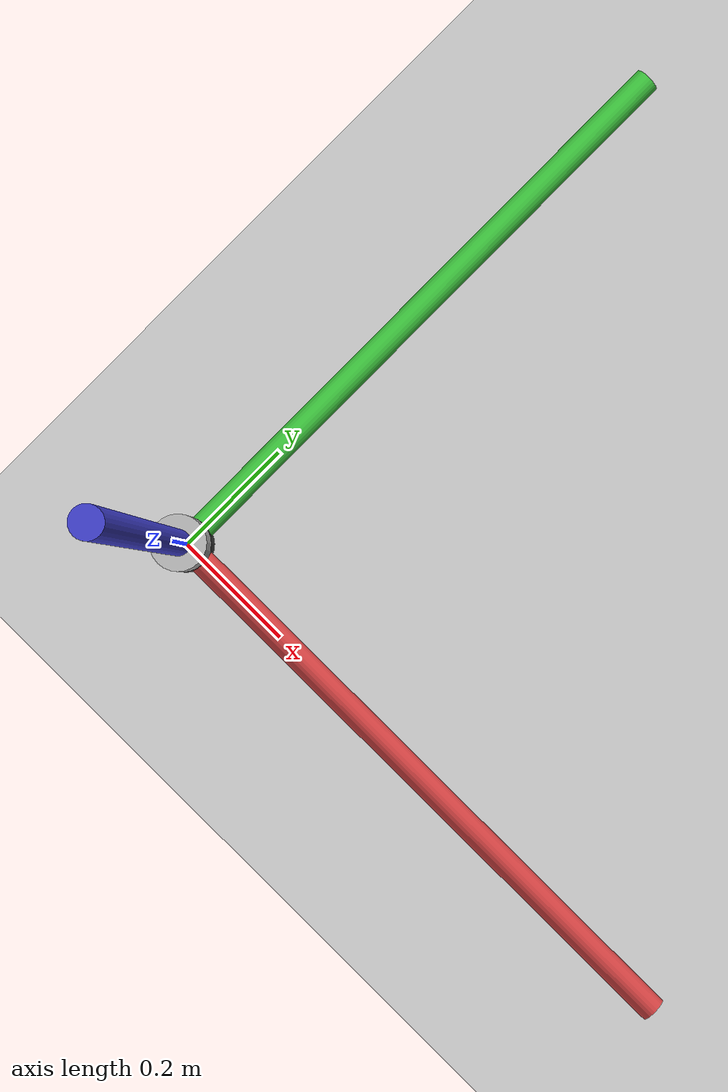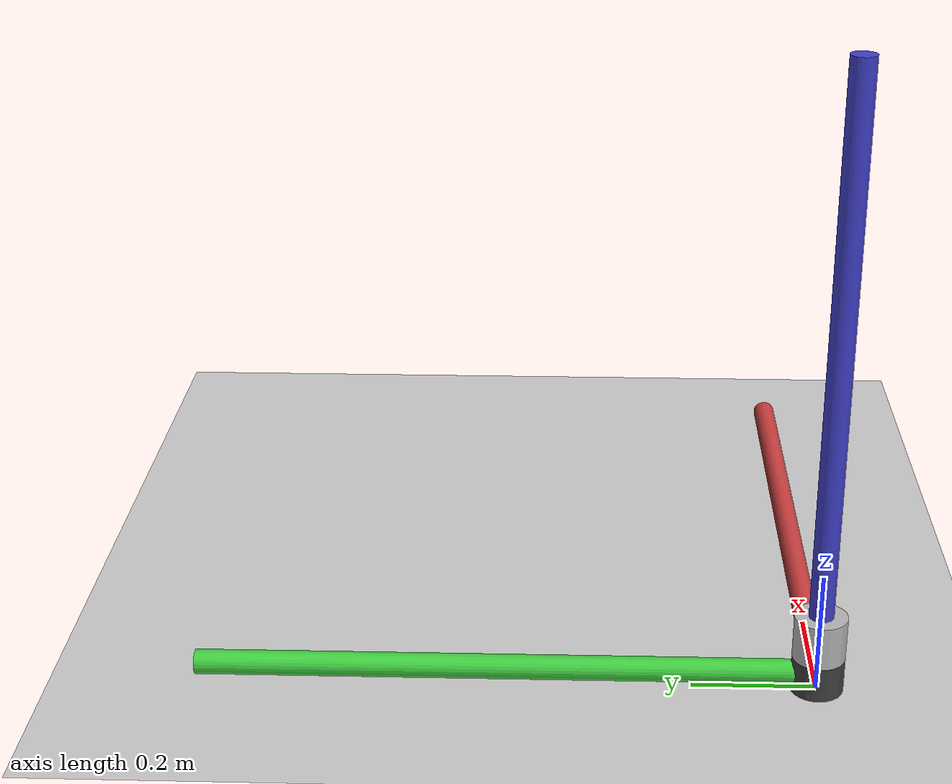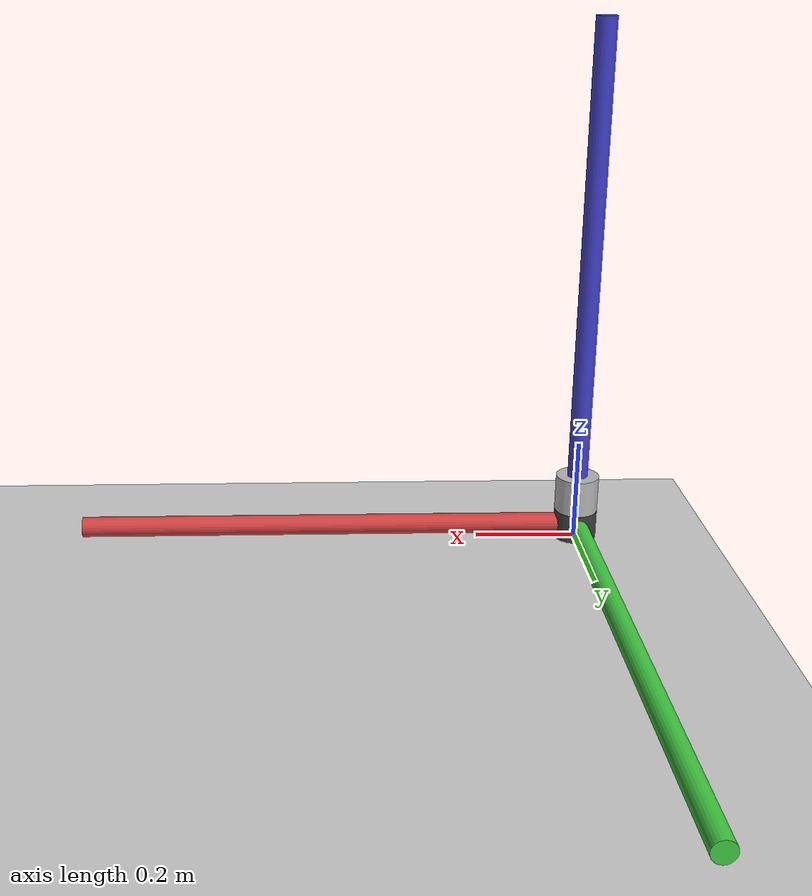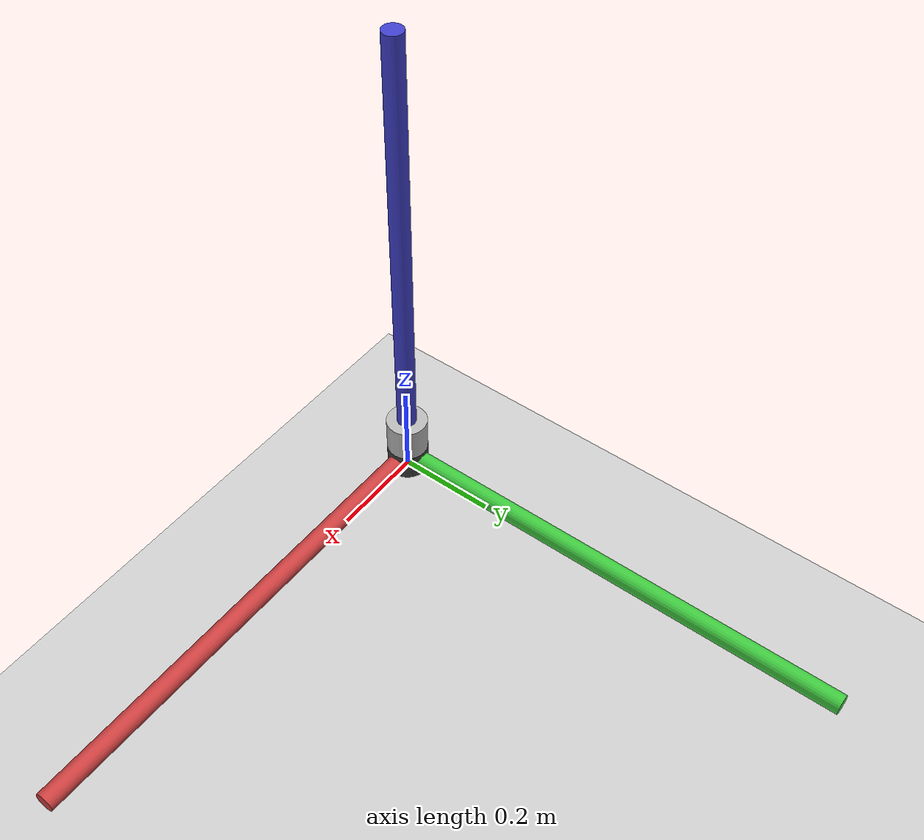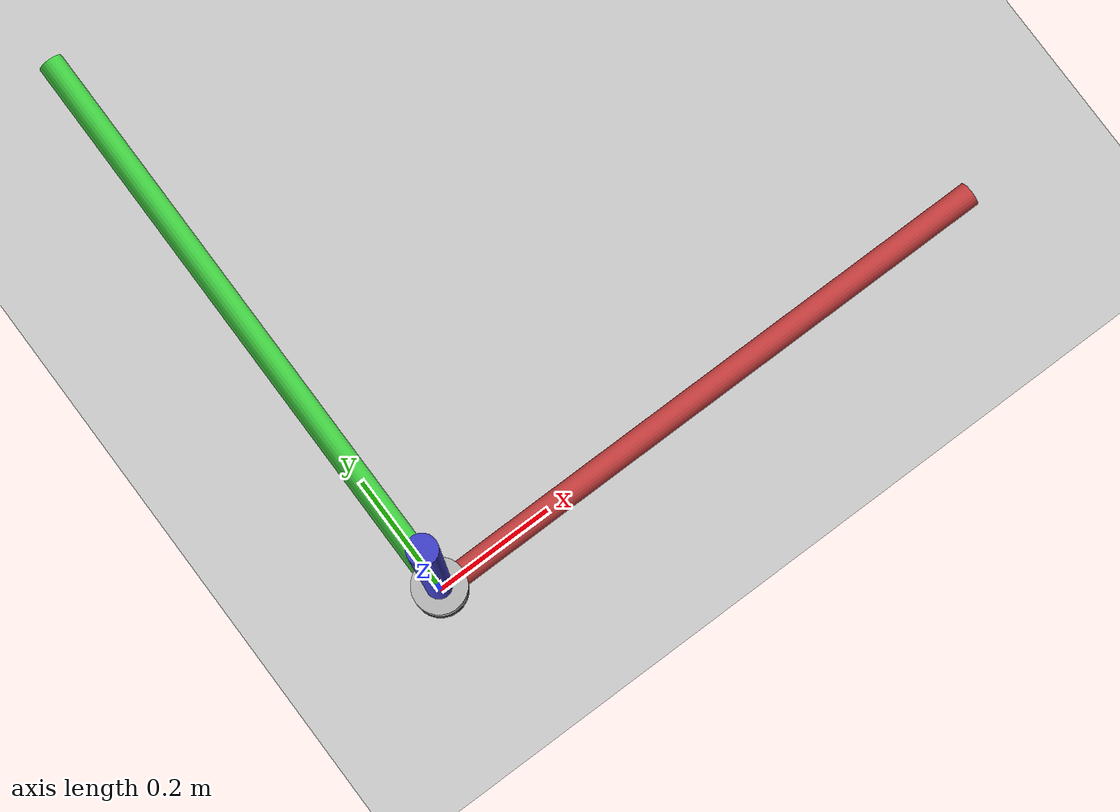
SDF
<?xml version="1.0" ?>
<sdf version="1.5">
  <world name="default">

    <physics type='ode'>
      <!-- default: step size (for real time demo but distorts point clouds) -->
      <!-- midway point for testing -->
      <max_step_size>0.0000100</max_step_size>
      <real_time_update_rate>100000.000000</real_time_update_rate>
      <!-- slow down for accurate data generation  -->

      <real_time_factor>1.000000</real_time_factor>
      <gravity>0.000000 0.000000 0.0000</gravity>
    </physics>

    <!-- A global light source -->
    <include>
      <uri>model://sun</uri>
    </include>

    <!-- A ground plane -->
    <include>
      <uri>model://ground_plane</uri>
    </include>

    <model name="my_velodyne">
      <pose>0 0 0 0 0 0</pose>
      <!-- Give the base link a unique name -->
      <link name="base">
        <!-- Offset the base by half the lenght of the cylinder -->
        <pose>0 0 0.029335 0 0 0</pose>
        <inertial>
        <mass>100000.0</mass>
        <!-- leaving defaulut inertial params causes base to spin w.r.t. world (bad) -->
        </inertial>

        <collision name="base_collision">
          <geometry>
            <cylinder>
              <!-- Radius and length provided by Velodyne -->
              <radius>.04267</radius>
              <length>.05867</length>
            </cylinder>
          </geometry>
        </collision>
        <!-- The visual is mostly a copy of the collision -->
        <visual name="base_visual">
          <geometry>
            <cylinder>
              <radius>.04267</radius>
              <length>.05867</length>
            </cylinder>
          </geometry>
          <material>
            <ambient>0.25 0.25 0.25 1 </ambient>
          </material>
        </visual>

        <visual name='base_visual_x'>
          <pose>0.5 0 0 0 1.57 0</pose>
          <geometry>
            <cylinder>
              <radius>0.02</radius>
              <length>1.</length>
            </cylinder>
          </geometry>
          <material>
            <ambient>0.8 0.25 0.25 1</ambient>
          </material>
        </visual>

        <visual name='base_visual_y'>
          <pose>0 0.5 0 1.57 0 0</pose>
          <geometry>
            <cylinder>
              <radius>0.02</radius>
              <length>1.</length>
            </cylinder>
          </geometry>
          <material>
            <ambient>0.25 0.8 0.25 1</ambient>
          </material>
        </visual>

        <visual name='base_visual_z'>
          <pose>0 0 0.5 0 0 1.57</pose>
          <geometry>
            <cylinder>
              <radius>0.02</radius>
              <length>1.</length>
            </cylinder>
          </geometry>
          <material>
            <ambient>0.25 0.25 0.8 1</ambient>
          </material>
        </visual>

      </link>

      <!-- Give the base link a unique name -->
      <link name="top">
        <!-- Vertically offset the top cylinder by the length of the bottom
            cylinder and half the length of this cylinder. -->
        <pose>0 0 0.095455 0 0 0</pose>
        <inertial>
         <mass>0.1</mass>
         <inertia>
           <ixx>0.000090623</ixx>
           <iyy>0.000090623</iyy>
           <izz>0.000091036</izz>
           <ixy>0</ixy>
           <ixz>0</ixz>
           <iyz>0</iyz>
         </inertia>
        </inertial>
        <collision name="top_collision">
          <geometry>
            <cylinder>
              <!-- Radius and length provided by Velodyne -->
              <radius>0.04267</radius>
              <length>0.07357</length>
            </cylinder>
          </geometry>
        </collision>

        <!-- The visual is mostly a copy of the collision -->
        <visual name="top_visual">
          <geometry>
            <cylinder>
              <radius>0.04267</radius>
              <length>0.07357</length>
            </cylinder>
          </geometry>
        </visual>
        <!-- Add a ray sensor, and give it a name -->
        <sensor type="ray" name="sensor">

          <pose>0 0 -0.004645 1.5707 0 0</pose>

          <!-- Enable visualization to see the rays in the GUI -->
          <visualize>true</visualize>

          <!-- Set the update rate of the sensor -->
          <update_rate>45000</update_rate>
          <ray>
            <!-- The scan element contains the horizontal and vertical beams.
                 We are leaving out the vertical beams for this tutorial. -->
          <noise>
            <!-- Use gaussian noise -->
            <type>gaussian</type>
            <mean>0.0</mean>
            <stddev>0.02</stddev>
          </noise>
            <scan>
              <!-- The horizontal beams -->
              <horizontal>
                <!-- The velodyne has 32 beams(samples) -->
                <samples>64</samples>

                <resolution>1</resolution>

                <!-- Minimum angle in radians -->
                <min_angle>-0.53529248</min_angle>

                <!-- Maximum angle in radians -->
                <max_angle>0.18622663</max_angle>
              </horizontal>
            </scan>

            <!-- Range defines characteristics of an individual beam -->
            <range>

              <!-- Minimum distance of the beam -->
              <min>0.25</min>

              <!-- Maximum distance of the beam -->
              <max>70</max>

              <!-- Linear resolution of the beam -->
              <resolution>0.01</resolution>
            </range>
          </ray>
          <plugin name="sensor_plugin" filename="libgazebo_ros_laser.so">
            <topicName>/my_velodyne/top/sensor/scan</topicName>
            <frameName>/base</frameName>
          </plugin>
        </sensor>

      </link>

    <joint type="fixed" name = "xarrow_joint">
      <parent>base</parent>
      <child>x_arrow</child>
    </joint>
    <joint type="fixed" name = "zarrow_joint">
      <parent>base</parent>
      <child>z_arrow</child>
    </joint>

    <!-- Each joint must have a unique name -->
    <joint type="revolute" name="joint">
      <!-- Position the joint at the bottom of the top link -->
      <pose>0 0 -0.036785 0 0 0</pose>
      <!-- Use the base link as the parent of the joint -->
      <parent>base</parent>
      <!-- Use the top link as the child of the joint -->
      <child>top</child>
      <!-- The axis defines the joint's degree of freedom -->
      <axis>
        <!-- Revolve around the z-axis -->
        <xyz>0 0 1</xyz>
        <!-- Limit refers to the range of motion of the joint -->
        <limit>
          <!-- Use a very large number to indicate a continuous revolution -->
          <lower>-10000000000000000</lower>
          <upper>10000000000000000</upper>
        </limit>
      </axis>
    </joint>
    <!-- add in velocity controller -->
    <plugin name="velodyne_control" filename="./libvelodyne_plugin.so"/>
    </model>

  </world>
</sdf>
